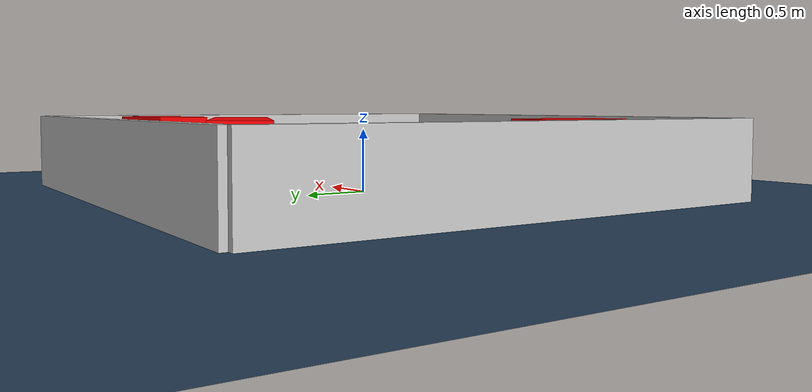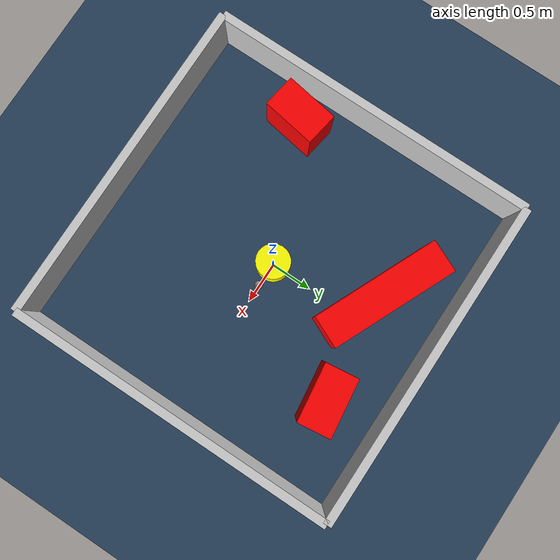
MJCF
<?xml version="1.0" ?>
<mujoco model="generated_environment">
  <option timestep="0.01" integrator="RK4" cone="elliptic"/>
  <default>
    <geom density="1"/>
  </default>
  <asset>
    <texture builtin="gradient" height="3072" rgb1="0.3 0.5 0.7" rgb2="0 0 0" type="skybox" width="512"/>
    <texture builtin="checker" height="300" mark="edge" markrgb="0.8 0.8 0.8" name="groundplane" rgb1="0.2 0.3 0.4" rgb2="0.1 0.2 0.3" type="2d" width="300"/>
    <material name="groundplane" reflectance="0.2" texrepeat="5 5" texture="groundplane" texuniform="true"/>
    <material name="robot" rgba="0.0 1.0 0.0 1"/>
  </asset>
  <worldbody>
    <light dir="0 0 -1" directional="true" pos="0 0 1.5"/>
    <geom condim="4" friction="1.0 0.005 0.001" material="groundplane" name="floor" size="0 0 0.05" type="plane"/>
    <body name="walls">
      <geom name="wall_1" condim="4" pos="-2.0 0.0 0.3" rgba="0.800000011920929 0.800000011920929 0.800000011920929 1.0" size="0.05 2.0 0.3" type="box"/>
      <geom name="wall_2" condim="4" pos="2.0 0.0 0.3" rgba="0.800000011920929 0.800000011920929 0.800000011920929 1.0" size="0.05 2.0 0.3" type="box"/>
      <geom name="wall_3" condim="4" pos="0.0 -2.0 0.3" rgba="0.800000011920929 0.800000011920929 0.800000011920929 1.0" size="2.0 0.05 0.3" type="box"/>
      <geom name="wall_4" condim="4" pos="0.0 2.0 0.3" rgba="0.800000011920929 0.800000011920929 0.800000011920929 1.0" size="2.0 0.05 0.3" type="box"/>
    </body>
    <body name="robot">
      <joint name="joint_x" type="slide" pos="0 0 0" axis="1 0 0"/>
      <joint name="joint_y" type="slide" pos="0 0 0" axis="0 1 0"/>
      <geom name="robot" type="sphere" pos="0.3 0.0 0.2" size="0.05" mass="5." friction="1.0 0.005 0.0001" condim="4" rgba="0.5 0.5 0.5 1.0"/>
      <site name="sensor_ball"/>
    </body>
    <body name="obstacle_movable_1">
      <geom name="obstacle_movable_1" condim="4" pos="0.0 0.0 0.2" euler="0 0 0.0" friction="1.0 0.005 0.001" rgba="1.0 1.0 0.0 1.0" size="0.2 0.2 0.0" type="cylinder" mass="0.1"/>
      <joint type="free"/>
    </body>
    <body name="obstacle_2_static">
      <geom name="obstacle_2_static" condim="4" pos="-0.3590168939072138 1.210734591976079 0.3" euler="0 0 335.9626080878885" friction="1.0 0.005 0.001" rgba="1 0 0 1" size="0.7724131940987378 0.2 0.3" type="box"/>
    </body>
    <body name="obstacle_3_static">
      <geom name="obstacle_3_static" condim="4" pos="0.9291693247205584 1.3153170033061572 0.3" euler="0 0 187.2354612558675" friction="1.0 0.005 0.001" rgba="1 0 0 1" size="0.3501567240335933 0.2 0.3" type="box"/>
    </body>
    <body name="obstacle_4_static">
      <geom name="obstacle_4_static" condim="4" pos="-1.5527431197036416 -0.6705595160987932 0.3" euler="0 0 260.7672737237046" friction="1.0 0.005 0.001" rgba="1 0 0 1" size="0.32683746910240136 0.2 0.3" type="box"/>
    </body>
  </worldbody>
  <actuator>
    <motor name="actuator_x" joint="joint_x" gear="1" ctrlrange="-1 1"/>
    <motor name="actuator_y" joint="joint_y" gear="1" ctrlrange="-1 1"/>
  </actuator>
</mujoco>
